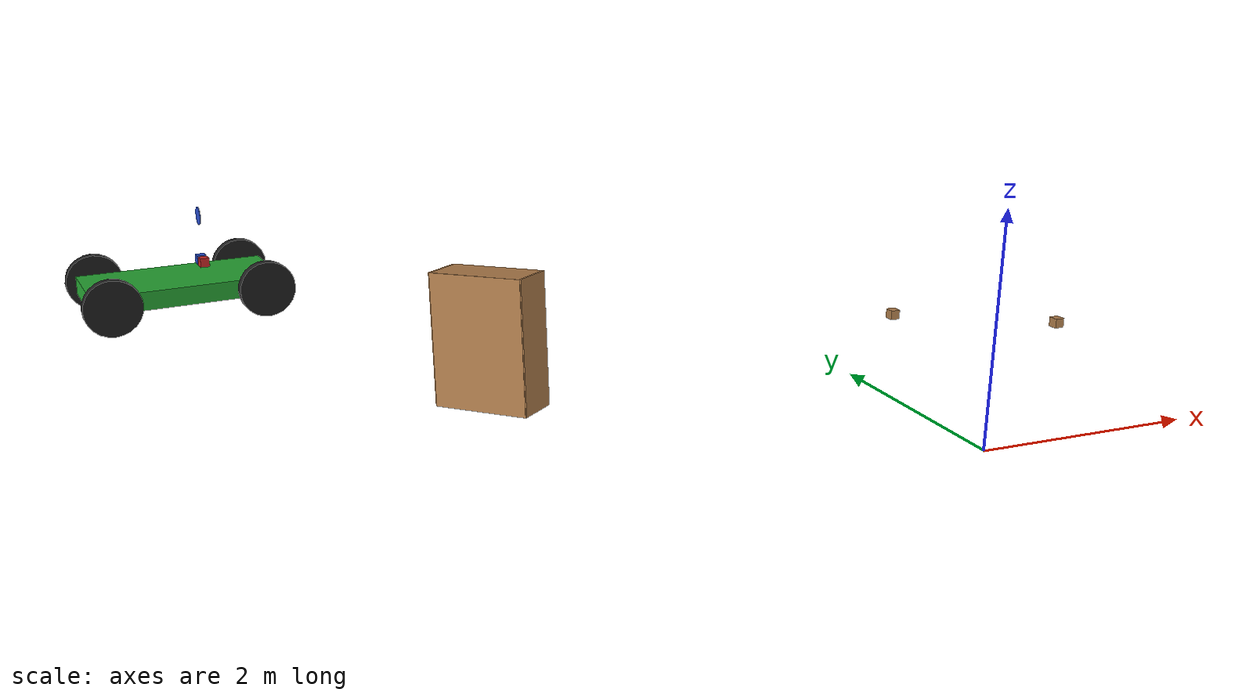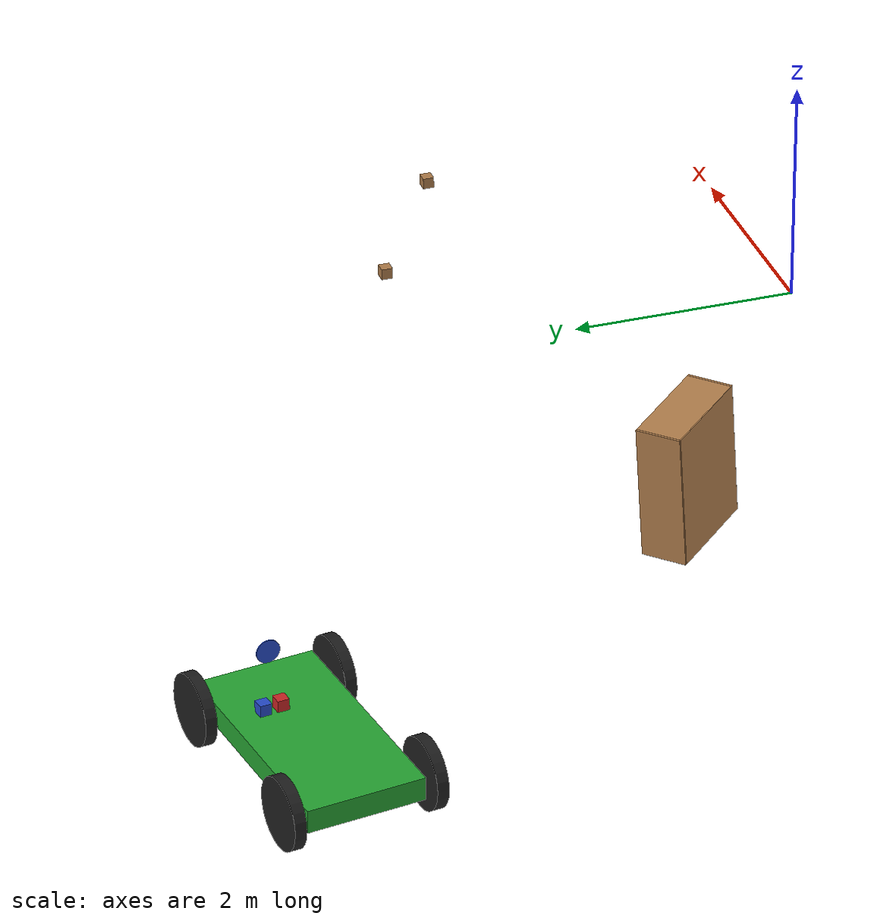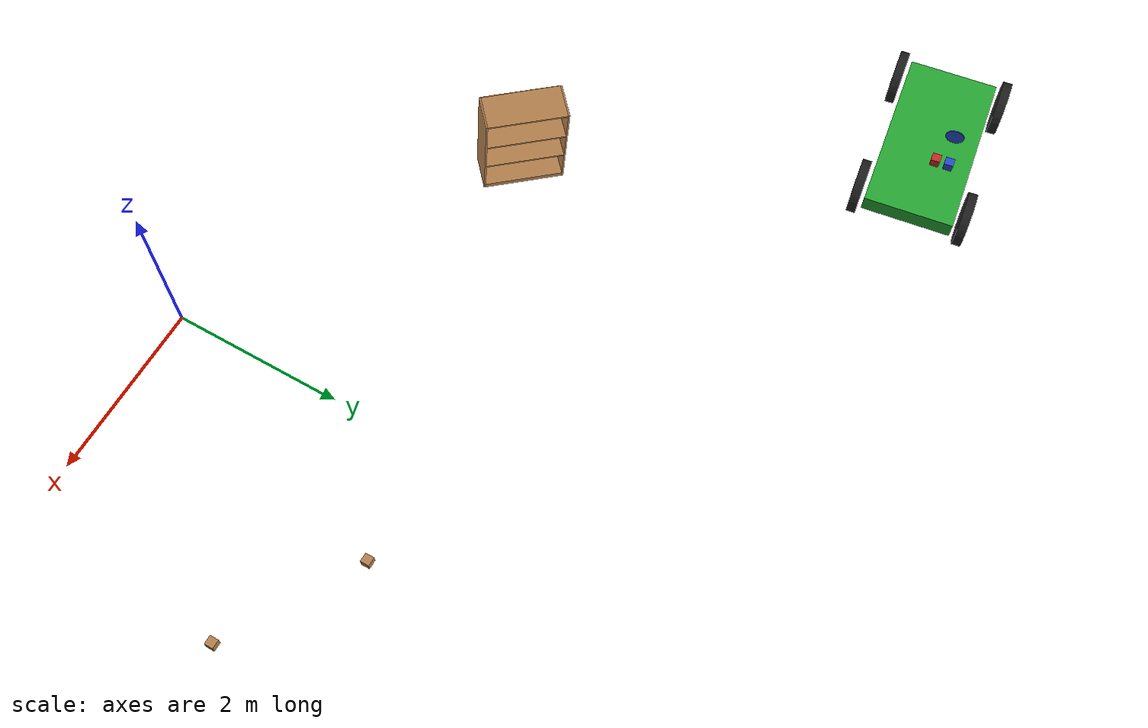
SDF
<sdf version="1.7">
 <world name="apriltag_world">
  <model name="bookshelf_clone_0">
   <static>1</static>
   <link name="link">
    <inertial><mass>1</mass></inertial>
    <collision name="back">
     <pose>0 0.005 0.6 0 -0 0</pose>
     <geometry><box><size>0.9 0.01 1.2</size></box></geometry>
    </collision>
    <visual name="visual1">
     <pose>0 0.005 0.6 0 -0 0</pose>
     <geometry><box><size>0.9 0.01 1.2</size></box></geometry>
     <material>
      <script><uri>file://media/materials/scripts/gazebo.material</uri><name>Gazebo/Wood</name></script>
     </material>
    </visual>
    <collision name="left_side">
     <pose>0.45 -0.195 0.6 0 -0 0</pose>
     <geometry><box><size>0.02 0.4 1.2</size></box></geometry>
    </collision>
    <visual name="visual2">
     <pose>0.45 -0.195 0.6 0 -0 0</pose>
     <geometry><box><size>0.02 0.4 1.2</size></box></geometry>
     <material>
      <script><uri>file://media/materials/scripts/gazebo.material</uri><name>Gazebo/Wood</name></script>
     </material>
    </visual>
    <collision name="right_side">
     <pose>-0.45 -0.195 0.6 0 -0 0</pose>
     <geometry><box><size>0.02 0.4 1.2</size></box></geometry>
    </collision>
    <visual name="visual3">
     <pose>-0.45 -0.195 0.6 0 -0 0</pose>
     <geometry><box><size>0.02 0.4 1.2</size></box></geometry>
     <material>
      <script><uri>file://media/materials/scripts/gazebo.material</uri><name>Gazebo/Wood</name></script>
     </material>
    </visual>
    <collision name="bottom">
     <pose>0 -0.195 0.03 0 -0 0</pose>
     <geometry><box><size>0.88 0.4 0.06</size></box></geometry>
    </collision>
    <visual name="visual4">
     <pose>0 -0.195 0.03 0 -0 0</pose>
     <geometry><box><size>0.88 0.4 0.06</size></box></geometry>
     <material>
      <script><uri>file://media/materials/scripts/gazebo.material</uri><name>Gazebo/Wood</name></script>
     </material>
    </visual>
    <collision name="top">
     <pose>0 -0.195 1.19 0 -0 0</pose>
     <geometry><box><size>0.88 0.4 0.02</size></box></geometry>
    </collision>
    <visual name="visual5">
     <pose>0 -0.195 1.19 0 -0 0</pose>
     <geometry><box><size>0.88 0.4 0.02</size></box></geometry>
     <material>
      <script><uri>file://media/materials/scripts/gazebo.material</uri><name>Gazebo/Wood</name></script>
     </material>
    </visual>
    <collision name="low_shelf">
     <pose>0 -0.195 0.43 0 -0 0</pose>
     <geometry><box><size>0.88 0.4 0.02</size></box></geometry>
    </collision>
    <visual name="visual6">
     <pose>0 -0.195 0.43 0 -0 0</pose>
     <geometry><box><size>0.88 0.4 0.02</size></box></geometry>
     <material>
      <script><uri>file://media/materials/scripts/gazebo.material</uri><name>Gazebo/Wood</name></script>
     </material>
    </visual>
    <collision name="high_shelf">
     <pose>0 -0.195 0.8 0 -0 0</pose>
     <geometry><box><size>0.88 0.4 0.02</size></box></geometry>
    </collision>
    <visual name="visual7">
     <pose>0 -0.195 0.8 0 -0 0</pose>
     <geometry><box><size>0.88 0.4 0.02</size></box></geometry>
     <material>
      <script><uri>file://media/materials/scripts/gazebo.material</uri><name>Gazebo/Wood</name></script>
     </material>
    </visual>
   </link>
   <pose>-3.6281 2.10354 0.062872 0.033085 0.055459 2.30524</pose>
  </model>
  <model name="wood_cube_10cm">
   <link name="link">
    <pose>0 0 0.05 0 -0 0</pose>
    <inertial>
     <mass>0.5167</mass>
     <inertia>
      <ixx>0.000861167</ixx>
      <ixy>0</ixy>
      <ixz>0</ixz>
      <iyy>0.000861167</iyy>
      <iyz>0</iyz>
      <izz>0.000861167</izz>
     </inertia>
    </inertial>
    <collision name="collision">
     <geometry><box><size>0.1 0.1 0.1</size></box></geometry>
     <surface>
      <contact>
       <poissons_ratio>0.347</poissons_ratio>
       <elastic_modulus>8.8e+09</elastic_modulus>
       <ode><kp>100000</kp><kd>100</kd><max_vel>100</max_vel><min_depth>0.001</min_depth></ode>
      </contact>
      <friction>
       <torsional>
        <coefficient>1</coefficient>
        <use_patch_radius>0</use_patch_radius>
        <surface_radius>0.01</surface_radius>
       </torsional>
      </friction>
     </surface>
    </collision>
    <visual name="visual">
     <geometry><box><size>0.1 0.1 0.1</size></box></geometry>
     <material>
      <script><uri>file://media/materials/scripts/gazebo.material</uri><name>Gazebo/Wood</name></script>
     </material>
    </visual>
   </link>
   <pose>2.78714 2.43426 0.048987 0 -0 0</pose>
  </model>
  <model name="wood_cube_10cm_clone">
   <link name="link">
    <pose>0 0 0.05 0 -0 0</pose>
    <inertial>
     <mass>0.5167</mass>
     <inertia>
      <ixx>0.000861167</ixx>
      <ixy>0</ixy>
      <ixz>0</ixz>
      <iyy>0.000861167</iyy>
      <iyz>0</iyz>
      <izz>0.000861167</izz>
     </inertia>
    </inertial>
    <collision name="collision">
     <geometry><box><size>0.1 0.1 0.1</size></box></geometry>
     <surface>
      <contact>
       <poissons_ratio>0.347</poissons_ratio>
       <elastic_modulus>8.8e+09</elastic_modulus>
       <ode><kp>100000</kp><kd>100</kd><max_vel>100</max_vel><min_depth>0.001</min_depth></ode>
      </contact>
      <friction>
       <torsional>
        <coefficient>1</coefficient>
        <use_patch_radius>0</use_patch_radius>
        <surface_radius>0.01</surface_radius>
       </torsional>
      </friction>
     </surface>
    </collision>
    <visual name="visual">
     <geometry><box><size>0.1 0.1 0.1</size></box></geometry>
     <material>
      <script><uri>file://media/materials/scripts/gazebo.material</uri><name>Gazebo/Wood</name></script>
     </material>
    </visual>
   </link>
   <pose>1.34062 3.29276 0.048987 0 -0 0</pose>
  </model>
  <model name="car">
   <link name="chassis">
    <pose>0 0 0.3 0 -0 0</pose>
    <collision name="collision"><geometry><box><size>2 1 0.2</size></box></geometry></collision>
    <visual name="visual">
     <geometry><box><size>2 1 0.2</size></box></geometry>
     <material>
      <script><uri>file://media/materials/scripts/gazebo.material</uri><name>Gazebo/Green</name></script>
     </material>
    </visual>
    <inertial>
     <inertia><ixx>1</ixx><ixy>0</ixy><ixz>0</ixz><iyy>1</iyy><iyz>0</iyz><izz>1</izz></inertia>
     <mass>1</mass>
    </inertial>
   </link>
   <link name="front_left_wheel">
    <pose>0.8 0.6 0.3 -0 1.5707 1.5707</pose>
    <collision name="collision">
     <geometry><cylinder><radius>0.3</radius><length>0.1</length></cylinder></geometry>
    </collision>
    <visual name="visual">
     <geometry><cylinder><radius>0.3</radius><length>0.1</length></cylinder></geometry>
     <material>
      <script><uri>file://media/materials/scripts/gazebo.material</uri><name>Gazebo/Black</name></script>
     </material>
    </visual>
    <inertial>
     <inertia><ixx>1</ixx><ixy>0</ixy><ixz>0</ixz><iyy>1</iyy><iyz>0</iyz><izz>1</izz></inertia>
     <mass>1</mass>
    </inertial>
   </link>
   <link name="front_right_wheel">
    <pose>0.8 -0.6 0.3 -0 1.5707 1.5707</pose>
    <collision name="collision">
     <geometry><cylinder><radius>0.3</radius><length>0.1</length></cylinder></geometry>
    </collision>
    <visual name="visual">
     <geometry><cylinder><radius>0.3</radius><length>0.1</length></cylinder></geometry>
     <material>
      <script><uri>file://media/materials/scripts/gazebo.material</uri><name>Gazebo/Black</name></script>
     </material>
    </visual>
    <inertial>
     <inertia><ixx>1</ixx><ixy>0</ixy><ixz>0</ixz><iyy>1</iyy><iyz>0</iyz><izz>1</izz></inertia>
     <mass>1</mass>
    </inertial>
   </link>
   <link name="back_right_wheel">
    <pose>-0.8 -0.6 0.3 -0 1.5707 1.5707</pose>
    <collision name="collision">
     <geometry><cylinder><radius>0.3</radius><length>0.1</length></cylinder></geometry>
    </collision>
    <visual name="visual">
     <geometry><cylinder><radius>0.3</radius><length>0.1</length></cylinder></geometry>
     <material>
      <script><uri>file://media/materials/scripts/gazebo.material</uri><name>Gazebo/Black</name></script>
     </material>
    </visual>
    <inertial>
     <inertia><ixx>1</ixx><ixy>0</ixy><ixz>0</ixz><iyy>1</iyy><iyz>0</iyz><izz>1</izz></inertia>
     <mass>1</mass>
    </inertial>
   </link>
   <link name="back_left_wheel">
    <pose>-0.8 0.6 0.3 -0 1.5707 1.5707</pose>
    <collision name="collision">
     <geometry><cylinder><radius>0.3</radius><length>0.1</length></cylinder></geometry>
    </collision>
    <visual name="visual">
     <geometry><cylinder><radius>0.3</radius><length>0.1</length></cylinder></geometry>
     <material>
      <script><uri>file://media/materials/scripts/gazebo.material</uri><name>Gazebo/Black</name></script>
     </material>
    </visual>
    <inertial>
     <inertia><ixx>1</ixx><ixy>0</ixy><ixz>0</ixz><iyy>1</iyy><iyz>0</iyz><izz>1</izz></inertia>
     <mass>1</mass>
    </inertial>
   </link>
   <link name="gas_pedal">
    <pose>0.3 0.1 0.5 0 -0 0</pose>
    <collision name="collision"><geometry><box><size>0.1 0.1 0.1</size></box></geometry></collision>
    <visual name="visual">
     <geometry><box><size>0.1 0.1 0.1</size></box></geometry>
     <material>
      <script><uri>file://media/materials/scripts/gazebo.material</uri><name>Gazebo/Red</name></script>
     </material>
    </visual>
    <inertial>
     <inertia><ixx>1</ixx><ixy>0</ixy><ixz>0</ixz><iyy>1</iyy><iyz>0</iyz><izz>1</izz></inertia>
     <mass>1</mass>
    </inertial>
   </link>
   <link name="brake_pedal">
    <pose>0.3 0.25 0.5 0 -0 0</pose>
    <collision name="collision"><geometry><box><size>0.1 0.1 0.1</size></box></geometry></collision>
    <visual name="visual">
     <geometry><box><size>0.1 0.1 0.1</size></box></geometry>
     <material>
      <script><uri>file://media/materials/scripts/gazebo.material</uri><name>Gazebo/Blue</name></script>
     </material>
    </visual>
    <inertial>
     <inertia><ixx>1</ixx><ixy>0</ixy><ixz>0</ixz><iyy>1</iyy><iyz>0</iyz><izz>1</izz></inertia>
     <mass>1</mass>
    </inertial>
   </link>
   <link name="steering_wheel">
    <pose>0.3 0.2 1 0 1.5707 0</pose>
    <collision name="collision">
     <geometry><cylinder><radius>0.1</radius><length>0.01</length></cylinder></geometry>
    </collision>
    <visual name="visual">
     <geometry><cylinder><radius>0.1</radius><length>0.01</length></cylinder></geometry>
     <material>
      <script><uri>file://media/materials/scripts/gazebo.material</uri><name>Gazebo/Blue</name></script>
     </material>
    </visual>
    <inertial>
     <inertia><ixx>1</ixx><ixy>0</ixy><ixz>0</ixz><iyy>1</iyy><iyz>0</iyz><izz>1</izz></inertia>
     <mass>1</mass>
    </inertial>
   </link>
   <joint name="gas_joint" type="prismatic">
    <parent>chassis</parent>
    <child>gas_pedal</child>
    <axis>
     <xyz expressed_in="__model__">1 0 0</xyz>
     <limit><lower>0</lower><upper>0.2</upper></limit>
     <dynamics><spring_reference>0</spring_reference><spring_stiffness>0</spring_stiffness></dynamics>
    </axis>
   </joint>
   <joint name="brake_joint" type="prismatic">
    <parent>chassis</parent>
    <child>brake_pedal</child>
    <axis>
     <xyz expressed_in="__model__">1 0 0</xyz>
     <limit><lower>0</lower><upper>0.2</upper></limit>
     <dynamics><spring_reference>0</spring_reference><spring_stiffness>0</spring_stiffness></dynamics>
    </axis>
   </joint>
   <joint name="steering_joint" type="revolute">
    <parent>chassis</parent>
    <child>steering_wheel</child>
    <axis>
     <xyz expressed_in="__model__">1 0 0</xyz>
     <limit><lower>-7.853</lower><upper>7.853</upper></limit>
     <dynamics><spring_reference>0</spring_reference><spring_stiffness>0</spring_stiffness></dynamics>
    </axis>
   </joint>
   <joint name="front_left_joint" type="revolute2">
    <parent>chassis</parent>
    <child>front_left_wheel</child>
    <axis>
     <xyz expressed_in="__model__">0 0 1</xyz>
     <limit><lower>-2.605e-06</lower><upper>-2.605e-06</upper></limit>
     <dynamics><spring_reference>0</spring_reference><spring_stiffness>0</spring_stiffness></dynamics>
    </axis>
    <axis2>
     <xyz expressed_in="__model__">0 1 0</xyz>
     <limit><upper>1e+16</upper><lower>-1e+16</lower></limit>
     <dynamics><spring_reference>0</spring_reference><spring_stiffness>0</spring_stiffness></dynamics>
    </axis2>
    <physics><ode><limit><cfm>0</cfm><erp>0.9</erp></limit></ode></physics>
   </joint>
   <joint name="front_right_joint" type="revolute2">
    <parent>chassis</parent>
    <child>front_right_wheel</child>
    <axis>
     <xyz expressed_in="__model__">0 0 1</xyz>
     <limit><lower>-2.605e-06</lower><upper>-2.605e-06</upper></limit>
     <dynamics><spring_reference>0</spring_reference><spring_stiffness>0</spring_stiffness></dynamics>
    </axis>
    <axis2>
     <xyz expressed_in="__model__">0 1 0</xyz>
     <limit><upper>1e+16</upper><lower>-1e+16</lower></limit>
     <dynamics><spring_reference>0</spring_reference><spring_stiffness>0</spring_stiffness></dynamics>
    </axis2>
    <physics><ode><limit><cfm>0</cfm><erp>0.9</erp></limit></ode></physics>
   </joint>
   <joint name="back_right_joint" type="revolute2">
    <parent>chassis</parent>
    <child>back_right_wheel</child>
    <axis>
     <xyz expressed_in="__model__">0 0 1</xyz>
     <limit><lower>0</lower><upper>0</upper></limit>
     <dynamics><spring_reference>0</spring_reference><spring_stiffness>0</spring_stiffness></dynamics>
    </axis>
    <axis2>
     <xyz expressed_in="__model__">0 1 0</xyz>
     <limit><upper>1e+16</upper><lower>-1e+16</lower></limit>
     <dynamics><spring_reference>0</spring_reference><spring_stiffness>0</spring_stiffness></dynamics>
    </axis2>
    <physics><ode><limit><cfm>0</cfm><erp>0.9</erp></limit></ode></physics>
   </joint>
   <joint name="back_left_joint" type="revolute2">
    <parent>chassis</parent>
    <child>back_left_wheel</child>
    <axis>
     <xyz expressed_in="__model__">0 0 1</xyz>
     <limit><lower>0</lower><upper>0</upper></limit>
     <dynamics><spring_reference>0</spring_reference><spring_stiffness>0</spring_stiffness></dynamics>
    </axis>
    <axis2>
     <xyz expressed_in="__model__">0 1 0</xyz>
     <limit><upper>1e+16</upper><lower>-1e+16</lower></limit>
     <dynamics><spring_reference>0</spring_reference><spring_stiffness>0</spring_stiffness></dynamics>
    </axis2>
    <physics><ode><limit><cfm>0</cfm><erp>0.9</erp></limit></ode></physics>
   </joint>
   <plugin name="vehicle" filename="libVehiclePlugin.so">
    <front_left>front_left_joint</front_left>
    <front_right>front_right_joint</front_right>
    <back_left>back_left_joint</back_left>
    <back_right>back_right_joint</back_right>
    <gas>gas_joint</gas>
    <brake>brake_joint</brake>
    <steering>steering_joint</steering>
    <front_power>10</front_power>
    <rear_power>10</rear_power>
    <tire_angle_range>0.5</tire_angle_range>
    <max_speed>10</max_speed>
    <aero_load>0.1</aero_load>
   </plugin>
   <pose>-5.84346 6.22741 0.05001 -2e-06 8e-06 0.144007</pose>
  </model>
 </world>
</sdf>
